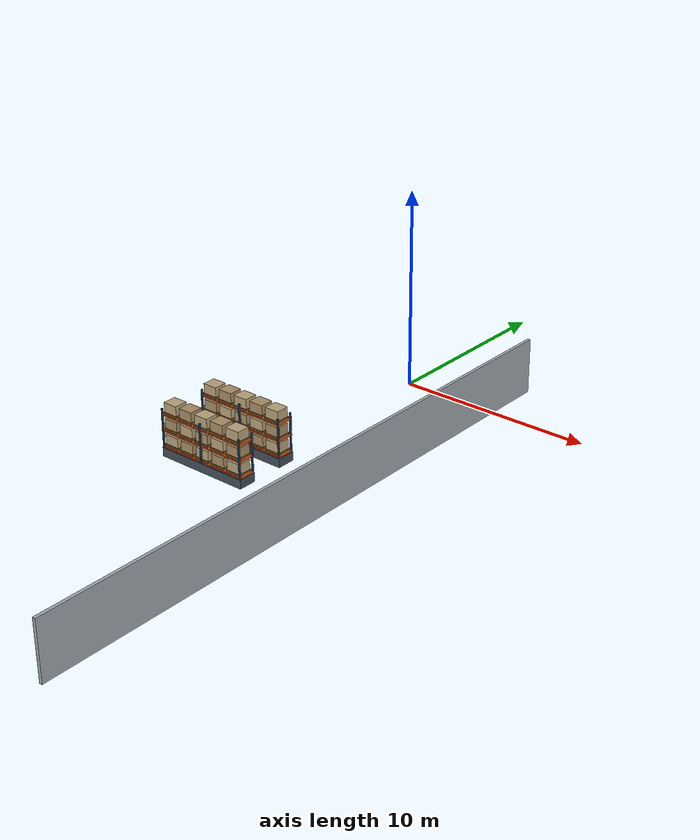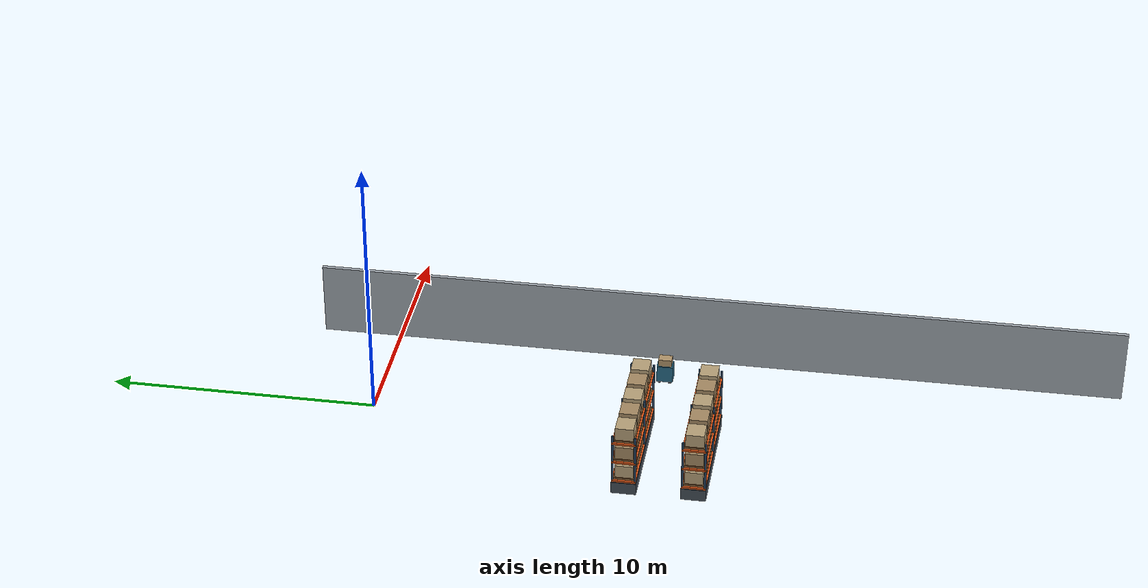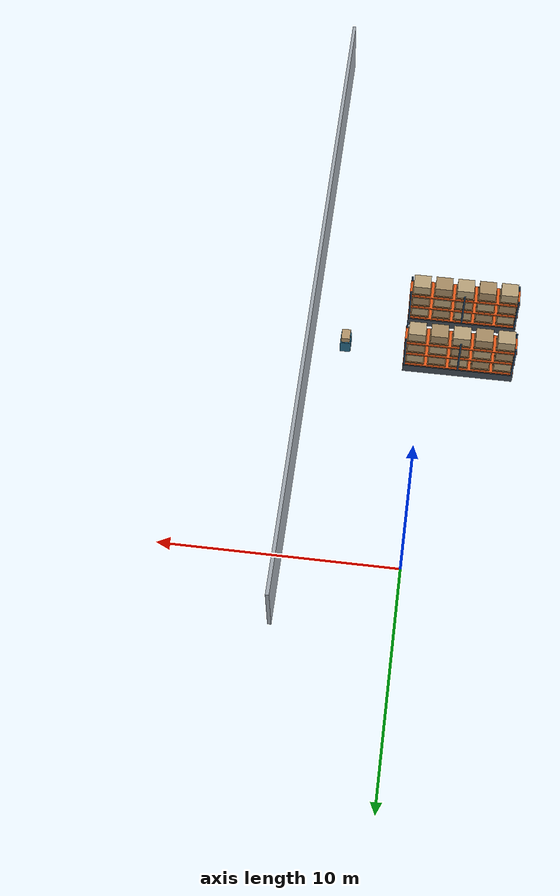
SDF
<sdf version="1.6">
 <world name="warehouse_logistics">
  <model name="warehouse_wall_east">
   <static>true</static>
   <pose>4.925000000 -12.250000000 0.000000000 0.000000000 0.000000000 0.000000000</pose>
   <link name="structure">
    <collision name="mapped_solid_collision">
     <pose>0.000000000 0.000000000 1.400000000 0.000000000 0.000000000 0.000000000</pose>
     <geometry><box><size>0.150000000 30.500000000 2.800000000</size></box></geometry>
    </collision>
    <visual name="mapped_solid_visual">
     <pose>0.000000000 0.000000000 1.400000000 0.000000000 0.000000000 0.000000000</pose>
     <geometry><box><size>0.150000000 30.500000000 2.800000000</size></box></geometry>
     <material><ambient>.64 .67 .70 1</ambient><diffuse>.64 .67 .70 1</diffuse></material>
    </visual>
   </link>
  </model>
  <model name="warehouse_rack_04">
   <static>true</static>
   <pose>-1.600000000 -10.000000000 0.000000000 0.000000000 0.000000000 0.000000000</pose>
   <link name="structure">
    <collision name="mapped_solid_collision">
     <pose>0.000000000 0.000000000 0.225000000 0.000000000 0.000000000 0.000000000</pose>
     <geometry><box><size>4.800000000 0.900000000 0.450000000</size></box></geometry>
    </collision>
    <visual name="mapped_solid_visual">
     <pose>0.000000000 0.000000000 0.225000000 0.000000000 0.000000000 0.000000000</pose>
     <geometry><box><size>4.800000000 0.900000000 0.450000000</size></box></geometry>
     <material><ambient>.27 .31 .35 1</ambient><diffuse>.27 .31 .35 1</diffuse></material>
    </visual>
    <visual name="upright_0_0_visual">
     <pose>-2.340000000 -0.405000000 1.200000000 0.000000000 0.000000000 0.000000000</pose>
     <geometry><box><size>0.075000000 0.075000000 2.400000000</size></box></geometry>
     <material><ambient>.16 .28 .40 1</ambient><diffuse>.16 .28 .40 1</diffuse></material>
    </visual>
    <visual name="upright_0_1_visual">
     <pose>-2.340000000 0.405000000 1.200000000 0.000000000 0.000000000 0.000000000</pose>
     <geometry><box><size>0.075000000 0.075000000 2.400000000</size></box></geometry>
     <material><ambient>.16 .28 .40 1</ambient><diffuse>.16 .28 .40 1</diffuse></material>
    </visual>
    <visual name="upright_1_0_visual">
     <pose>0.000000000 -0.405000000 1.200000000 0.000000000 0.000000000 0.000000000</pose>
     <geometry><box><size>0.075000000 0.075000000 2.400000000</size></box></geometry>
     <material><ambient>.16 .28 .40 1</ambient><diffuse>.16 .28 .40 1</diffuse></material>
    </visual>
    <visual name="upright_1_1_visual">
     <pose>0.000000000 0.405000000 1.200000000 0.000000000 0.000000000 0.000000000</pose>
     <geometry><box><size>0.075000000 0.075000000 2.400000000</size></box></geometry>
     <material><ambient>.16 .28 .40 1</ambient><diffuse>.16 .28 .40 1</diffuse></material>
    </visual>
    <visual name="upright_2_0_visual">
     <pose>2.340000000 -0.405000000 1.200000000 0.000000000 0.000000000 0.000000000</pose>
     <geometry><box><size>0.075000000 0.075000000 2.400000000</size></box></geometry>
     <material><ambient>.16 .28 .40 1</ambient><diffuse>.16 .28 .40 1</diffuse></material>
    </visual>
    <visual name="upright_2_1_visual">
     <pose>2.340000000 0.405000000 1.200000000 0.000000000 0.000000000 0.000000000</pose>
     <geometry><box><size>0.075000000 0.075000000 2.400000000</size></box></geometry>
     <material><ambient>.16 .28 .40 1</ambient><diffuse>.16 .28 .40 1</diffuse></material>
    </visual>
    <visual name="shelf_0_visual">
     <pose>0.000000000 0.000000000 0.500000000 0.000000000 0.000000000 0.000000000</pose>
     <geometry><box><size>4.800000000 0.870000000 0.065000000</size></box></geometry>
     <material><ambient>.92 .36 .10 1</ambient><diffuse>.92 .36 .10 1</diffuse></material>
    </visual>
    <visual name="pallet_0_0_visual">
     <pose>-1.910000000 0.000000000 0.575000000 0.000000000 0.000000000 0.000000000</pose>
     <geometry><box><size>0.820000000 0.750000000 0.080000000</size></box></geometry>
     <material><ambient>.55 .39 .22 1</ambient><diffuse>.55 .39 .22 1</diffuse></material>
    </visual>
    <visual name="load_0_0_visual">
     <pose>-1.910000000 0.000000000 0.855000000 0.000000000 0.000000000 0.000000000</pose>
     <geometry><box><size>0.730000000 0.660000000 0.480000000</size></box></geometry>
     <material><ambient>.74 .65 .49 1</ambient><diffuse>.74 .65 .49 1</diffuse></material>
    </visual>
    <visual name="pallet_0_1_visual">
     <pose>-0.960000000 0.000000000 0.575000000 0.000000000 0.000000000 0.000000000</pose>
     <geometry><box><size>0.820000000 0.750000000 0.080000000</size></box></geometry>
     <material><ambient>.55 .39 .22 1</ambient><diffuse>.55 .39 .22 1</diffuse></material>
    </visual>
    <visual name="load_0_1_visual">
     <pose>-0.960000000 0.000000000 0.855000000 0.000000000 0.000000000 0.000000000</pose>
     <geometry><box><size>0.730000000 0.660000000 0.480000000</size></box></geometry>
     <material><ambient>.67 .56 .40 1</ambient><diffuse>.67 .56 .40 1</diffuse></material>
    </visual>
    <visual name="pallet_0_2_visual">
     <pose>-0.010000000 0.000000000 0.575000000 0.000000000 0.000000000 0.000000000</pose>
     <geometry><box><size>0.820000000 0.750000000 0.080000000</size></box></geometry>
     <material><ambient>.55 .39 .22 1</ambient><diffuse>.55 .39 .22 1</diffuse></material>
    </visual>
    <visual name="load_0_2_visual">
     <pose>-0.010000000 0.000000000 0.855000000 0.000000000 0.000000000 0.000000000</pose>
     <geometry><box><size>0.730000000 0.660000000 0.480000000</size></box></geometry>
     <material><ambient>.74 .65 .49 1</ambient><diffuse>.74 .65 .49 1</diffuse></material>
    </visual>
    <visual name="pallet_0_3_visual">
     <pose>0.940000000 0.000000000 0.575000000 0.000000000 0.000000000 0.000000000</pose>
     <geometry><box><size>0.820000000 0.750000000 0.080000000</size></box></geometry>
     <material><ambient>.55 .39 .22 1</ambient><diffuse>.55 .39 .22 1</diffuse></material>
    </visual>
    <visual name="load_0_3_visual">
     <pose>0.940000000 0.000000000 0.855000000 0.000000000 0.000000000 0.000000000</pose>
     <geometry><box><size>0.730000000 0.660000000 0.480000000</size></box></geometry>
     <material><ambient>.67 .56 .40 1</ambient><diffuse>.67 .56 .40 1</diffuse></material>
    </visual>
    <visual name="pallet_0_4_visual">
     <pose>1.890000000 0.000000000 0.575000000 0.000000000 0.000000000 0.000000000</pose>
     <geometry><box><size>0.820000000 0.750000000 0.080000000</size></box></geometry>
     <material><ambient>.55 .39 .22 1</ambient><diffuse>.55 .39 .22 1</diffuse></material>
    </visual>
    <visual name="load_0_4_visual">
     <pose>1.890000000 0.000000000 0.855000000 0.000000000 0.000000000 0.000000000</pose>
     <geometry><box><size>0.730000000 0.660000000 0.480000000</size></box></geometry>
     <material><ambient>.74 .65 .49 1</ambient><diffuse>.74 .65 .49 1</diffuse></material>
    </visual>
    <visual name="shelf_1_visual">
     <pose>0.000000000 0.000000000 1.300000000 0.000000000 0.000000000 0.000000000</pose>
     <geometry><box><size>4.800000000 0.870000000 0.065000000</size></box></geometry>
     <material><ambient>.92 .36 .10 1</ambient><diffuse>.92 .36 .10 1</diffuse></material>
    </visual>
    <visual name="pallet_1_0_visual">
     <pose>-1.910000000 0.000000000 1.375000000 0.000000000 0.000000000 0.000000000</pose>
     <geometry><box><size>0.820000000 0.750000000 0.080000000</size></box></geometry>
     <material><ambient>.55 .39 .22 1</ambient><diffuse>.55 .39 .22 1</diffuse></material>
    </visual>
    <visual name="load_1_0_visual">
     <pose>-1.910000000 0.000000000 1.655000000 0.000000000 0.000000000 0.000000000</pose>
     <geometry><box><size>0.730000000 0.660000000 0.480000000</size></box></geometry>
     <material><ambient>.67 .56 .40 1</ambient><diffuse>.67 .56 .40 1</diffuse></material>
    </visual>
    <visual name="pallet_1_1_visual">
     <pose>-0.960000000 0.000000000 1.375000000 0.000000000 0.000000000 0.000000000</pose>
     <geometry><box><size>0.820000000 0.750000000 0.080000000</size></box></geometry>
     <material><ambient>.55 .39 .22 1</ambient><diffuse>.55 .39 .22 1</diffuse></material>
    </visual>
    <visual name="load_1_1_visual">
     <pose>-0.960000000 0.000000000 1.655000000 0.000000000 0.000000000 0.000000000</pose>
     <geometry><box><size>0.730000000 0.660000000 0.480000000</size></box></geometry>
     <material><ambient>.74 .65 .49 1</ambient><diffuse>.74 .65 .49 1</diffuse></material>
    </visual>
    <visual name="pallet_1_2_visual">
     <pose>-0.010000000 0.000000000 1.375000000 0.000000000 0.000000000 0.000000000</pose>
     <geometry><box><size>0.820000000 0.750000000 0.080000000</size></box></geometry>
     <material><ambient>.55 .39 .22 1</ambient><diffuse>.55 .39 .22 1</diffuse></material>
    </visual>
    <visual name="load_1_2_visual">
     <pose>-0.010000000 0.000000000 1.655000000 0.000000000 0.000000000 0.000000000</pose>
     <geometry><box><size>0.730000000 0.660000000 0.480000000</size></box></geometry>
     <material><ambient>.67 .56 .40 1</ambient><diffuse>.67 .56 .40 1</diffuse></material>
    </visual>
    <visual name="pallet_1_3_visual">
     <pose>0.940000000 0.000000000 1.375000000 0.000000000 0.000000000 0.000000000</pose>
     <geometry><box><size>0.820000000 0.750000000 0.080000000</size></box></geometry>
     <material><ambient>.55 .39 .22 1</ambient><diffuse>.55 .39 .22 1</diffuse></material>
    </visual>
    <visual name="load_1_3_visual">
     <pose>0.940000000 0.000000000 1.655000000 0.000000000 0.000000000 0.000000000</pose>
     <geometry><box><size>0.730000000 0.660000000 0.480000000</size></box></geometry>
     <material><ambient>.74 .65 .49 1</ambient><diffuse>.74 .65 .49 1</diffuse></material>
    </visual>
    <visual name="pallet_1_4_visual">
     <pose>1.890000000 0.000000000 1.375000000 0.000000000 0.000000000 0.000000000</pose>
     <geometry><box><size>0.820000000 0.750000000 0.080000000</size></box></geometry>
     <material><ambient>.55 .39 .22 1</ambient><diffuse>.55 .39 .22 1</diffuse></material>
    </visual>
    <visual name="load_1_4_visual">
     <pose>1.890000000 0.000000000 1.655000000 0.000000000 0.000000000 0.000000000</pose>
     <geometry><box><size>0.730000000 0.660000000 0.480000000</size></box></geometry>
     <material><ambient>.67 .56 .40 1</ambient><diffuse>.67 .56 .40 1</diffuse></material>
    </visual>
    <visual name="shelf_2_visual">
     <pose>0.000000000 0.000000000 2.100000000 0.000000000 0.000000000 0.000000000</pose>
     <geometry><box><size>4.800000000 0.870000000 0.065000000</size></box></geometry>
     <material><ambient>.92 .36 .10 1</ambient><diffuse>.92 .36 .10 1</diffuse></material>
    </visual>
    <visual name="pallet_2_0_visual">
     <pose>-1.910000000 0.000000000 2.175000000 0.000000000 0.000000000 0.000000000</pose>
     <geometry><box><size>0.820000000 0.750000000 0.080000000</size></box></geometry>
     <material><ambient>.55 .39 .22 1</ambient><diffuse>.55 .39 .22 1</diffuse></material>
    </visual>
    <visual name="load_2_0_visual">
     <pose>-1.910000000 0.000000000 2.455000000 0.000000000 0.000000000 0.000000000</pose>
     <geometry><box><size>0.730000000 0.660000000 0.480000000</size></box></geometry>
     <material><ambient>.74 .65 .49 1</ambient><diffuse>.74 .65 .49 1</diffuse></material>
    </visual>
    <visual name="pallet_2_1_visual">
     <pose>-0.960000000 0.000000000 2.175000000 0.000000000 0.000000000 0.000000000</pose>
     <geometry><box><size>0.820000000 0.750000000 0.080000000</size></box></geometry>
     <material><ambient>.55 .39 .22 1</ambient><diffuse>.55 .39 .22 1</diffuse></material>
    </visual>
    <visual name="load_2_1_visual">
     <pose>-0.960000000 0.000000000 2.455000000 0.000000000 0.000000000 0.000000000</pose>
     <geometry><box><size>0.730000000 0.660000000 0.480000000</size></box></geometry>
     <material><ambient>.67 .56 .40 1</ambient><diffuse>.67 .56 .40 1</diffuse></material>
    </visual>
    <visual name="pallet_2_2_visual">
     <pose>-0.010000000 0.000000000 2.175000000 0.000000000 0.000000000 0.000000000</pose>
     <geometry><box><size>0.820000000 0.750000000 0.080000000</size></box></geometry>
     <material><ambient>.55 .39 .22 1</ambient><diffuse>.55 .39 .22 1</diffuse></material>
    </visual>
    <visual name="load_2_2_visual">
     <pose>-0.010000000 0.000000000 2.455000000 0.000000000 0.000000000 0.000000000</pose>
     <geometry><box><size>0.730000000 0.660000000 0.480000000</size></box></geometry>
     <material><ambient>.74 .65 .49 1</ambient><diffuse>.74 .65 .49 1</diffuse></material>
    </visual>
    <visual name="pallet_2_3_visual">
     <pose>0.940000000 0.000000000 2.175000000 0.000000000 0.000000000 0.000000000</pose>
     <geometry><box><size>0.820000000 0.750000000 0.080000000</size></box></geometry>
     <material><ambient>.55 .39 .22 1</ambient><diffuse>.55 .39 .22 1</diffuse></material>
    </visual>
    <visual name="load_2_3_visual">
     <pose>0.940000000 0.000000000 2.455000000 0.000000000 0.000000000 0.000000000</pose>
     <geometry><box><size>0.730000000 0.660000000 0.480000000</size></box></geometry>
     <material><ambient>.67 .56 .40 1</ambient><diffuse>.67 .56 .40 1</diffuse></material>
    </visual>
    <visual name="pallet_2_4_visual">
     <pose>1.890000000 0.000000000 2.175000000 0.000000000 0.000000000 0.000000000</pose>
     <geometry><box><size>0.820000000 0.750000000 0.080000000</size></box></geometry>
     <material><ambient>.55 .39 .22 1</ambient><diffuse>.55 .39 .22 1</diffuse></material>
    </visual>
    <visual name="load_2_4_visual">
     <pose>1.890000000 0.000000000 2.455000000 0.000000000 0.000000000 0.000000000</pose>
     <geometry><box><size>0.730000000 0.660000000 0.480000000</size></box></geometry>
     <material><ambient>.74 .65 .49 1</ambient><diffuse>.74 .65 .49 1</diffuse></material>
    </visual>
   </link>
  </model>
  <model name="warehouse_rack_05">
   <static>true</static>
   <pose>-1.600000000 -12.500000000 0.000000000 0.000000000 0.000000000 0.000000000</pose>
   <link name="structure">
    <collision name="mapped_solid_collision">
     <pose>0.000000000 0.000000000 0.225000000 0.000000000 0.000000000 0.000000000</pose>
     <geometry><box><size>4.800000000 0.900000000 0.450000000</size></box></geometry>
    </collision>
    <visual name="mapped_solid_visual">
     <pose>0.000000000 0.000000000 0.225000000 0.000000000 0.000000000 0.000000000</pose>
     <geometry><box><size>4.800000000 0.900000000 0.450000000</size></box></geometry>
     <material><ambient>.27 .31 .35 1</ambient><diffuse>.27 .31 .35 1</diffuse></material>
    </visual>
    <visual name="upright_0_0_visual">
     <pose>-2.340000000 -0.405000000 1.200000000 0.000000000 0.000000000 0.000000000</pose>
     <geometry><box><size>0.075000000 0.075000000 2.400000000</size></box></geometry>
     <material><ambient>.16 .28 .40 1</ambient><diffuse>.16 .28 .40 1</diffuse></material>
    </visual>
    <visual name="upright_0_1_visual">
     <pose>-2.340000000 0.405000000 1.200000000 0.000000000 0.000000000 0.000000000</pose>
     <geometry><box><size>0.075000000 0.075000000 2.400000000</size></box></geometry>
     <material><ambient>.16 .28 .40 1</ambient><diffuse>.16 .28 .40 1</diffuse></material>
    </visual>
    <visual name="upright_1_0_visual">
     <pose>0.000000000 -0.405000000 1.200000000 0.000000000 0.000000000 0.000000000</pose>
     <geometry><box><size>0.075000000 0.075000000 2.400000000</size></box></geometry>
     <material><ambient>.16 .28 .40 1</ambient><diffuse>.16 .28 .40 1</diffuse></material>
    </visual>
    <visual name="upright_1_1_visual">
     <pose>0.000000000 0.405000000 1.200000000 0.000000000 0.000000000 0.000000000</pose>
     <geometry><box><size>0.075000000 0.075000000 2.400000000</size></box></geometry>
     <material><ambient>.16 .28 .40 1</ambient><diffuse>.16 .28 .40 1</diffuse></material>
    </visual>
    <visual name="upright_2_0_visual">
     <pose>2.340000000 -0.405000000 1.200000000 0.000000000 0.000000000 0.000000000</pose>
     <geometry><box><size>0.075000000 0.075000000 2.400000000</size></box></geometry>
     <material><ambient>.16 .28 .40 1</ambient><diffuse>.16 .28 .40 1</diffuse></material>
    </visual>
    <visual name="upright_2_1_visual">
     <pose>2.340000000 0.405000000 1.200000000 0.000000000 0.000000000 0.000000000</pose>
     <geometry><box><size>0.075000000 0.075000000 2.400000000</size></box></geometry>
     <material><ambient>.16 .28 .40 1</ambient><diffuse>.16 .28 .40 1</diffuse></material>
    </visual>
    <visual name="shelf_0_visual">
     <pose>0.000000000 0.000000000 0.500000000 0.000000000 0.000000000 0.000000000</pose>
     <geometry><box><size>4.800000000 0.870000000 0.065000000</size></box></geometry>
     <material><ambient>.92 .36 .10 1</ambient><diffuse>.92 .36 .10 1</diffuse></material>
    </visual>
    <visual name="pallet_0_0_visual">
     <pose>-1.910000000 0.000000000 0.575000000 0.000000000 0.000000000 0.000000000</pose>
     <geometry><box><size>0.820000000 0.750000000 0.080000000</size></box></geometry>
     <material><ambient>.55 .39 .22 1</ambient><diffuse>.55 .39 .22 1</diffuse></material>
    </visual>
    <visual name="load_0_0_visual">
     <pose>-1.910000000 0.000000000 0.855000000 0.000000000 0.000000000 0.000000000</pose>
     <geometry><box><size>0.730000000 0.660000000 0.480000000</size></box></geometry>
     <material><ambient>.74 .65 .49 1</ambient><diffuse>.74 .65 .49 1</diffuse></material>
    </visual>
    <visual name="pallet_0_1_visual">
     <pose>-0.960000000 0.000000000 0.575000000 0.000000000 0.000000000 0.000000000</pose>
     <geometry><box><size>0.820000000 0.750000000 0.080000000</size></box></geometry>
     <material><ambient>.55 .39 .22 1</ambient><diffuse>.55 .39 .22 1</diffuse></material>
    </visual>
    <visual name="load_0_1_visual">
     <pose>-0.960000000 0.000000000 0.855000000 0.000000000 0.000000000 0.000000000</pose>
     <geometry><box><size>0.730000000 0.660000000 0.480000000</size></box></geometry>
     <material><ambient>.67 .56 .40 1</ambient><diffuse>.67 .56 .40 1</diffuse></material>
    </visual>
    <visual name="pallet_0_2_visual">
     <pose>-0.010000000 0.000000000 0.575000000 0.000000000 0.000000000 0.000000000</pose>
     <geometry><box><size>0.820000000 0.750000000 0.080000000</size></box></geometry>
     <material><ambient>.55 .39 .22 1</ambient><diffuse>.55 .39 .22 1</diffuse></material>
    </visual>
    <visual name="load_0_2_visual">
     <pose>-0.010000000 0.000000000 0.855000000 0.000000000 0.000000000 0.000000000</pose>
     <geometry><box><size>0.730000000 0.660000000 0.480000000</size></box></geometry>
     <material><ambient>.74 .65 .49 1</ambient><diffuse>.74 .65 .49 1</diffuse></material>
    </visual>
    <visual name="pallet_0_3_visual">
     <pose>0.940000000 0.000000000 0.575000000 0.000000000 0.000000000 0.000000000</pose>
     <geometry><box><size>0.820000000 0.750000000 0.080000000</size></box></geometry>
     <material><ambient>.55 .39 .22 1</ambient><diffuse>.55 .39 .22 1</diffuse></material>
    </visual>
    <visual name="load_0_3_visual">
     <pose>0.940000000 0.000000000 0.855000000 0.000000000 0.000000000 0.000000000</pose>
     <geometry><box><size>0.730000000 0.660000000 0.480000000</size></box></geometry>
     <material><ambient>.67 .56 .40 1</ambient><diffuse>.67 .56 .40 1</diffuse></material>
    </visual>
    <visual name="pallet_0_4_visual">
     <pose>1.890000000 0.000000000 0.575000000 0.000000000 0.000000000 0.000000000</pose>
     <geometry><box><size>0.820000000 0.750000000 0.080000000</size></box></geometry>
     <material><ambient>.55 .39 .22 1</ambient><diffuse>.55 .39 .22 1</diffuse></material>
    </visual>
    <visual name="load_0_4_visual">
     <pose>1.890000000 0.000000000 0.855000000 0.000000000 0.000000000 0.000000000</pose>
     <geometry><box><size>0.730000000 0.660000000 0.480000000</size></box></geometry>
     <material><ambient>.74 .65 .49 1</ambient><diffuse>.74 .65 .49 1</diffuse></material>
    </visual>
    <visual name="shelf_1_visual">
     <pose>0.000000000 0.000000000 1.300000000 0.000000000 0.000000000 0.000000000</pose>
     <geometry><box><size>4.800000000 0.870000000 0.065000000</size></box></geometry>
     <material><ambient>.92 .36 .10 1</ambient><diffuse>.92 .36 .10 1</diffuse></material>
    </visual>
    <visual name="pallet_1_0_visual">
     <pose>-1.910000000 0.000000000 1.375000000 0.000000000 0.000000000 0.000000000</pose>
     <geometry><box><size>0.820000000 0.750000000 0.080000000</size></box></geometry>
     <material><ambient>.55 .39 .22 1</ambient><diffuse>.55 .39 .22 1</diffuse></material>
    </visual>
    <visual name="load_1_0_visual">
     <pose>-1.910000000 0.000000000 1.655000000 0.000000000 0.000000000 0.000000000</pose>
     <geometry><box><size>0.730000000 0.660000000 0.480000000</size></box></geometry>
     <material><ambient>.67 .56 .40 1</ambient><diffuse>.67 .56 .40 1</diffuse></material>
    </visual>
    <visual name="pallet_1_1_visual">
     <pose>-0.960000000 0.000000000 1.375000000 0.000000000 0.000000000 0.000000000</pose>
     <geometry><box><size>0.820000000 0.750000000 0.080000000</size></box></geometry>
     <material><ambient>.55 .39 .22 1</ambient><diffuse>.55 .39 .22 1</diffuse></material>
    </visual>
    <visual name="load_1_1_visual">
     <pose>-0.960000000 0.000000000 1.655000000 0.000000000 0.000000000 0.000000000</pose>
     <geometry><box><size>0.730000000 0.660000000 0.480000000</size></box></geometry>
     <material><ambient>.74 .65 .49 1</ambient><diffuse>.74 .65 .49 1</diffuse></material>
    </visual>
    <visual name="pallet_1_2_visual">
     <pose>-0.010000000 0.000000000 1.375000000 0.000000000 0.000000000 0.000000000</pose>
     <geometry><box><size>0.820000000 0.750000000 0.080000000</size></box></geometry>
     <material><ambient>.55 .39 .22 1</ambient><diffuse>.55 .39 .22 1</diffuse></material>
    </visual>
    <visual name="load_1_2_visual">
     <pose>-0.010000000 0.000000000 1.655000000 0.000000000 0.000000000 0.000000000</pose>
     <geometry><box><size>0.730000000 0.660000000 0.480000000</size></box></geometry>
     <material><ambient>.67 .56 .40 1</ambient><diffuse>.67 .56 .40 1</diffuse></material>
    </visual>
    <visual name="pallet_1_3_visual">
     <pose>0.940000000 0.000000000 1.375000000 0.000000000 0.000000000 0.000000000</pose>
     <geometry><box><size>0.820000000 0.750000000 0.080000000</size></box></geometry>
     <material><ambient>.55 .39 .22 1</ambient><diffuse>.55 .39 .22 1</diffuse></material>
    </visual>
    <visual name="load_1_3_visual">
     <pose>0.940000000 0.000000000 1.655000000 0.000000000 0.000000000 0.000000000</pose>
     <geometry><box><size>0.730000000 0.660000000 0.480000000</size></box></geometry>
     <material><ambient>.74 .65 .49 1</ambient><diffuse>.74 .65 .49 1</diffuse></material>
    </visual>
    <visual name="pallet_1_4_visual">
     <pose>1.890000000 0.000000000 1.375000000 0.000000000 0.000000000 0.000000000</pose>
     <geometry><box><size>0.820000000 0.750000000 0.080000000</size></box></geometry>
     <material><ambient>.55 .39 .22 1</ambient><diffuse>.55 .39 .22 1</diffuse></material>
    </visual>
    <visual name="load_1_4_visual">
     <pose>1.890000000 0.000000000 1.655000000 0.000000000 0.000000000 0.000000000</pose>
     <geometry><box><size>0.730000000 0.660000000 0.480000000</size></box></geometry>
     <material><ambient>.67 .56 .40 1</ambient><diffuse>.67 .56 .40 1</diffuse></material>
    </visual>
    <visual name="shelf_2_visual">
     <pose>0.000000000 0.000000000 2.100000000 0.000000000 0.000000000 0.000000000</pose>
     <geometry><box><size>4.800000000 0.870000000 0.065000000</size></box></geometry>
     <material><ambient>.92 .36 .10 1</ambient><diffuse>.92 .36 .10 1</diffuse></material>
    </visual>
    <visual name="pallet_2_0_visual">
     <pose>-1.910000000 0.000000000 2.175000000 0.000000000 0.000000000 0.000000000</pose>
     <geometry><box><size>0.820000000 0.750000000 0.080000000</size></box></geometry>
     <material><ambient>.55 .39 .22 1</ambient><diffuse>.55 .39 .22 1</diffuse></material>
    </visual>
    <visual name="load_2_0_visual">
     <pose>-1.910000000 0.000000000 2.455000000 0.000000000 0.000000000 0.000000000</pose>
     <geometry><box><size>0.730000000 0.660000000 0.480000000</size></box></geometry>
     <material><ambient>.74 .65 .49 1</ambient><diffuse>.74 .65 .49 1</diffuse></material>
    </visual>
    <visual name="pallet_2_1_visual">
     <pose>-0.960000000 0.000000000 2.175000000 0.000000000 0.000000000 0.000000000</pose>
     <geometry><box><size>0.820000000 0.750000000 0.080000000</size></box></geometry>
     <material><ambient>.55 .39 .22 1</ambient><diffuse>.55 .39 .22 1</diffuse></material>
    </visual>
    <visual name="load_2_1_visual">
     <pose>-0.960000000 0.000000000 2.455000000 0.000000000 0.000000000 0.000000000</pose>
     <geometry><box><size>0.730000000 0.660000000 0.480000000</size></box></geometry>
     <material><ambient>.67 .56 .40 1</ambient><diffuse>.67 .56 .40 1</diffuse></material>
    </visual>
    <visual name="pallet_2_2_visual">
     <pose>-0.010000000 0.000000000 2.175000000 0.000000000 0.000000000 0.000000000</pose>
     <geometry><box><size>0.820000000 0.750000000 0.080000000</size></box></geometry>
     <material><ambient>.55 .39 .22 1</ambient><diffuse>.55 .39 .22 1</diffuse></material>
    </visual>
    <visual name="load_2_2_visual">
     <pose>-0.010000000 0.000000000 2.455000000 0.000000000 0.000000000 0.000000000</pose>
     <geometry><box><size>0.730000000 0.660000000 0.480000000</size></box></geometry>
     <material><ambient>.74 .65 .49 1</ambient><diffuse>.74 .65 .49 1</diffuse></material>
    </visual>
    <visual name="pallet_2_3_visual">
     <pose>0.940000000 0.000000000 2.175000000 0.000000000 0.000000000 0.000000000</pose>
     <geometry><box><size>0.820000000 0.750000000 0.080000000</size></box></geometry>
     <material><ambient>.55 .39 .22 1</ambient><diffuse>.55 .39 .22 1</diffuse></material>
    </visual>
    <visual name="load_2_3_visual">
     <pose>0.940000000 0.000000000 2.455000000 0.000000000 0.000000000 0.000000000</pose>
     <geometry><box><size>0.730000000 0.660000000 0.480000000</size></box></geometry>
     <material><ambient>.67 .56 .40 1</ambient><diffuse>.67 .56 .40 1</diffuse></material>
    </visual>
    <visual name="pallet_2_4_visual">
     <pose>1.890000000 0.000000000 2.175000000 0.000000000 0.000000000 0.000000000</pose>
     <geometry><box><size>0.820000000 0.750000000 0.080000000</size></box></geometry>
     <material><ambient>.55 .39 .22 1</ambient><diffuse>.55 .39 .22 1</diffuse></material>
    </visual>
    <visual name="load_2_4_visual">
     <pose>1.890000000 0.000000000 2.455000000 0.000000000 0.000000000 0.000000000</pose>
     <geometry><box><size>0.730000000 0.660000000 0.480000000</size></box></geometry>
     <material><ambient>.74 .65 .49 1</ambient><diffuse>.74 .65 .49 1</diffuse></material>
    </visual>
   </link>
  </model>
  <model name="warehouse_cart_2">
   <static>false</static>
   <pose>3.400000000 -10.500000000 0.000000000 0.000000000 0.000000000 1.570796327</pose>
   <link name="body">
    <kinematic>true</kinematic>
    <gravity>false</gravity>
    <inertial><mass>30</mass><inertia><ixx>1</ixx><iyy>1</iyy><izz>1</izz></inertia></inertial>
    <collision name="cart_body_collision">
     <pose>0.000000000 0.000000000 0.400000000 0.000000000 0.000000000 0.000000000</pose>
     <geometry><box><size>0.600000000 0.450000000 0.650000000</size></box></geometry>
    </collision>
    <visual name="cart_body_visual">
     <pose>0.000000000 0.000000000 0.400000000 0.000000000 0.000000000 0.000000000</pose>
     <geometry><box><size>0.600000000 0.450000000 0.650000000</size></box></geometry>
     <material><ambient>.16 .43 .55 1</ambient><diffuse>.16 .43 .55 1</diffuse></material>
    </visual>
    <visual name="cart_load_visual">
     <pose>0.000000000 0.000000000 0.865000000 0.000000000 0.000000000 0.000000000</pose>
     <geometry><box><size>0.500000000 0.370000000 0.280000000</size></box></geometry>
     <material><ambient>.72 .60 .43 1</ambient><diffuse>.72 .60 .43 1</diffuse></material>
    </visual>
    <visual name="wheel_0_0_visual">
     <pose>-0.200000000 -0.190000000 0.070000000 1.570796327 0.000000000 0.000000000</pose>
     <geometry><cylinder><radius>0.07</radius><length>0.04</length></cylinder></geometry>
     <material><ambient>.10 .12 .14 1</ambient><diffuse>.10 .12 .14 1</diffuse></material>
    </visual>
    <visual name="wheel_0_1_visual">
     <pose>-0.200000000 0.190000000 0.070000000 1.570796327 0.000000000 0.000000000</pose>
     <geometry><cylinder><radius>0.07</radius><length>0.04</length></cylinder></geometry>
     <material><ambient>.10 .12 .14 1</ambient><diffuse>.10 .12 .14 1</diffuse></material>
    </visual>
    <visual name="wheel_1_0_visual">
     <pose>0.200000000 -0.190000000 0.070000000 1.570796327 0.000000000 0.000000000</pose>
     <geometry><cylinder><radius>0.07</radius><length>0.04</length></cylinder></geometry>
     <material><ambient>.10 .12 .14 1</ambient><diffuse>.10 .12 .14 1</diffuse></material>
    </visual>
    <visual name="wheel_1_1_visual">
     <pose>0.200000000 0.190000000 0.070000000 1.570796327 0.000000000 0.000000000</pose>
     <geometry><cylinder><radius>0.07</radius><length>0.04</length></cylinder></geometry>
     <material><ambient>.10 .12 .14 1</ambient><diffuse>.10 .12 .14 1</diffuse></material>
    </visual>
   </link>
  </model>
 </world>
</sdf>
